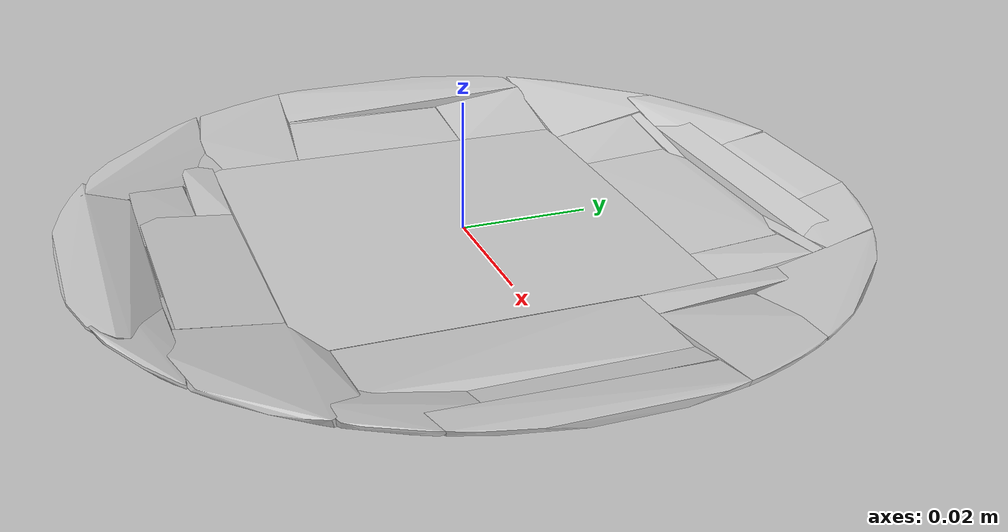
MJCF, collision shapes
<mujoco model="mug_70">
  <compiler angle="radian" autolimits="true" meshdir="."/>
  <asset>
    <mesh file="visual/model_normalized_0.obj" name="mug_6_normalized_0_vis" scale="0.12 0.12 0.12" refquat="0.7071067811865472 0.0 0.0 0.7071067811865476" />
    <mesh file="collision/model_normalized_collision_22.obj" name="mug_6_normalized_collision_22._coll" scale="0.12 0.12 0.12" refquat="0.7071067811865472 0.0 0.0 0.7071067811865476" />
    <mesh file="collision/model_normalized_collision_23.obj" name="mug_6_normalized_collision_23._coll" scale="0.12 0.12 0.12" refquat="0.7071067811865472 0.0 0.0 0.7071067811865476" />
    <mesh file="collision/model_normalized_collision_21.obj" name="mug_6_normalized_collision_21._coll" scale="0.12 0.12 0.12" refquat="0.7071067811865472 0.0 0.0 0.7071067811865476" />
    <mesh file="collision/model_normalized_collision_20.obj" name="mug_6_normalized_collision_20._coll" scale="0.12 0.12 0.12" refquat="0.7071067811865472 0.0 0.0 0.7071067811865476" />
    <mesh file="collision/model_normalized_collision_24.obj" name="mug_6_normalized_collision_24._coll" scale="0.12 0.12 0.12" refquat="0.7071067811865472 0.0 0.0 0.7071067811865476" />
    <mesh file="collision/model_normalized_collision_30.obj" name="mug_6_normalized_collision_30._coll" scale="0.12 0.12 0.12" refquat="0.7071067811865472 0.0 0.0 0.7071067811865476" />
    <mesh file="collision/model_normalized_collision_18.obj" name="mug_6_normalized_collision_18._coll" scale="0.12 0.12 0.12" refquat="0.7071067811865472 0.0 0.0 0.7071067811865476" />
    <mesh file="collision/model_normalized_collision_19.obj" name="mug_6_normalized_collision_19._coll" scale="0.12 0.12 0.12" refquat="0.7071067811865472 0.0 0.0 0.7071067811865476" />
    <mesh file="collision/model_normalized_collision_31.obj" name="mug_6_normalized_collision_31._coll" scale="0.12 0.12 0.12" refquat="0.7071067811865472 0.0 0.0 0.7071067811865476" />
    <mesh file="collision/model_normalized_collision_25.obj" name="mug_6_normalized_collision_25._coll" scale="0.12 0.12 0.12" refquat="0.7071067811865472 0.0 0.0 0.7071067811865476" />
    <mesh file="collision/model_normalized_collision_27.obj" name="mug_6_normalized_collision_27._coll" scale="0.12 0.12 0.12" refquat="0.7071067811865472 0.0 0.0 0.7071067811865476" />
    <mesh file="collision/model_normalized_collision_26.obj" name="mug_6_normalized_collision_26._coll" scale="0.12 0.12 0.12" refquat="0.7071067811865472 0.0 0.0 0.7071067811865476" />
    <mesh file="collision/model_normalized_collision_9.obj" name="mug_6_normalized_collision_9._coll" scale="0.12 0.12 0.12" refquat="0.7071067811865472 0.0 0.0 0.7071067811865476" />
    <mesh file="collision/model_normalized_collision_8.obj" name="mug_6_normalized_collision_8._coll" scale="0.12 0.12 0.12" refquat="0.7071067811865472 0.0 0.0 0.7071067811865476" />
    <mesh file="collision/model_normalized_collision_6.obj" name="mug_6_normalized_collision_6._coll" scale="0.12 0.12 0.12" refquat="0.7071067811865472 0.0 0.0 0.7071067811865476" />
    <mesh file="collision/model_normalized_collision_7.obj" name="mug_6_normalized_collision_7._coll" scale="0.12 0.12 0.12" refquat="0.7071067811865472 0.0 0.0 0.7071067811865476" />
    <mesh file="collision/model_normalized_collision_5.obj" name="mug_6_normalized_collision_5._coll" scale="0.12 0.12 0.12" refquat="0.7071067811865472 0.0 0.0 0.7071067811865476" />
    <mesh file="collision/model_normalized_collision_4.obj" name="mug_6_normalized_collision_4._coll" scale="0.12 0.12 0.12" refquat="0.7071067811865472 0.0 0.0 0.7071067811865476" />
    <mesh file="collision/model_normalized_collision_0.obj" name="mug_6_normalized_collision_0._coll" scale="0.12 0.12 0.12" refquat="0.7071067811865472 0.0 0.0 0.7071067811865476" />
    <mesh file="collision/model_normalized_collision_1.obj" name="mug_6_normalized_collision_1._coll" scale="0.12 0.12 0.12" refquat="0.7071067811865472 0.0 0.0 0.7071067811865476" />
    <mesh file="collision/model_normalized_collision_3.obj" name="mug_6_normalized_collision_3._coll" scale="0.12 0.12 0.12" refquat="0.7071067811865472 0.0 0.0 0.7071067811865476" />
    <mesh file="collision/model_normalized_collision_2.obj" name="mug_6_normalized_collision_2._coll" scale="0.12 0.12 0.12" refquat="0.7071067811865472 0.0 0.0 0.7071067811865476" />
    <mesh file="collision/model_normalized_collision_17.obj" name="mug_6_normalized_collision_17._coll" scale="0.12 0.12 0.12" refquat="0.7071067811865472 0.0 0.0 0.7071067811865476" />
    <mesh file="collision/model_normalized_collision_16.obj" name="mug_6_normalized_collision_16._coll" scale="0.12 0.12 0.12" refquat="0.7071067811865472 0.0 0.0 0.7071067811865476" />
    <mesh file="collision/model_normalized_collision_28.obj" name="mug_6_normalized_collision_28._coll" scale="0.12 0.12 0.12" refquat="0.7071067811865472 0.0 0.0 0.7071067811865476" />
    <mesh file="collision/model_normalized_collision_14.obj" name="mug_6_normalized_collision_14._coll" scale="0.12 0.12 0.12" refquat="0.7071067811865472 0.0 0.0 0.7071067811865476" />
    <mesh file="collision/model_normalized_collision_15.obj" name="mug_6_normalized_collision_15._coll" scale="0.12 0.12 0.12" refquat="0.7071067811865472 0.0 0.0 0.7071067811865476" />
    <mesh file="collision/model_normalized_collision_29.obj" name="mug_6_normalized_collision_29._coll" scale="0.12 0.12 0.12" refquat="0.7071067811865472 0.0 0.0 0.7071067811865476" />
    <mesh file="collision/model_normalized_collision_11.obj" name="mug_6_normalized_collision_11._coll" scale="0.12 0.12 0.12" refquat="0.7071067811865472 0.0 0.0 0.7071067811865476" />
    <mesh file="collision/model_normalized_collision_10.obj" name="mug_6_normalized_collision_10._coll" scale="0.12 0.12 0.12" refquat="0.7071067811865472 0.0 0.0 0.7071067811865476" />
    <mesh file="collision/model_normalized_collision_12.obj" name="mug_6_normalized_collision_12._coll" scale="0.12 0.12 0.12" refquat="0.7071067811865472 0.0 0.0 0.7071067811865476" />
    <mesh file="collision/model_normalized_collision_13.obj" name="mug_6_normalized_collision_13._coll" scale="0.12 0.12 0.12" refquat="0.7071067811865472 0.0 0.0 0.7071067811865476" />
    <texture type="2d" name="mug_60" file="visual/image0.png" />
    <material name="m_mug_mug_6" texture="mug_60" specular="0.5" shininess="0.359999993" />
  </asset>
  <worldbody>
    <body name="body_obj_mug_6">
      <freejoint /><body name="object_mug_6">
        <geom solimp="0.998 0.998 0.001" solref="0.001 1" density="100" friction="0.95 0.3 0.1" type="mesh" mesh="mug_6_normalized_0_vis" conaffinity="0" contype="0" group="2" material="m_mug_mug_6" />
        <geom solimp="0.998 0.998 0.001" solref="0.001 1" density="100" friction="0.95 0.3 0.1" type="mesh" mesh="mug_6_normalized_collision_22._coll" group="3" rgba="0.8 0.8 0.8 0.0" />
        <geom solimp="0.998 0.998 0.001" solref="0.001 1" density="100" friction="0.95 0.3 0.1" type="mesh" mesh="mug_6_normalized_collision_23._coll" group="3" rgba="0.8 0.8 0.8 0.0" />
        <geom solimp="0.998 0.998 0.001" solref="0.001 1" density="100" friction="0.95 0.3 0.1" type="mesh" mesh="mug_6_normalized_collision_21._coll" group="3" rgba="0.8 0.8 0.8 0.0" />
        <geom solimp="0.998 0.998 0.001" solref="0.001 1" density="100" friction="0.95 0.3 0.1" type="mesh" mesh="mug_6_normalized_collision_20._coll" group="3" rgba="0.8 0.8 0.8 0.0" />
        <geom solimp="0.998 0.998 0.001" solref="0.001 1" density="100" friction="0.95 0.3 0.1" type="mesh" mesh="mug_6_normalized_collision_24._coll" group="3" rgba="0.8 0.8 0.8 0.0" />
        <geom solimp="0.998 0.998 0.001" solref="0.001 1" density="100" friction="0.95 0.3 0.1" type="mesh" mesh="mug_6_normalized_collision_30._coll" group="3" rgba="0.8 0.8 0.8 0.0" />
        <geom solimp="0.998 0.998 0.001" solref="0.001 1" density="100" friction="0.95 0.3 0.1" type="mesh" mesh="mug_6_normalized_collision_18._coll" group="3" rgba="0.8 0.8 0.8 0.0" />
        <geom solimp="0.998 0.998 0.001" solref="0.001 1" density="100" friction="0.95 0.3 0.1" type="mesh" mesh="mug_6_normalized_collision_19._coll" group="3" rgba="0.8 0.8 0.8 0.0" />
        <geom solimp="0.998 0.998 0.001" solref="0.001 1" density="100" friction="0.95 0.3 0.1" type="mesh" mesh="mug_6_normalized_collision_31._coll" group="3" rgba="0.8 0.8 0.8 0.0" />
        <geom solimp="0.998 0.998 0.001" solref="0.001 1" density="100" friction="0.95 0.3 0.1" type="mesh" mesh="mug_6_normalized_collision_25._coll" group="3" rgba="0.8 0.8 0.8 0.0" />
        <geom solimp="0.998 0.998 0.001" solref="0.001 1" density="100" friction="0.95 0.3 0.1" type="mesh" mesh="mug_6_normalized_collision_27._coll" group="3" rgba="0.8 0.8 0.8 0.0" />
        <geom solimp="0.998 0.998 0.001" solref="0.001 1" density="100" friction="0.95 0.3 0.1" type="mesh" mesh="mug_6_normalized_collision_26._coll" group="3" rgba="0.8 0.8 0.8 0.0" />
        <geom solimp="0.998 0.998 0.001" solref="0.001 1" density="100" friction="0.95 0.3 0.1" type="mesh" mesh="mug_6_normalized_collision_9._coll" group="3" rgba="0.8 0.8 0.8 0.0" />
        <geom solimp="0.998 0.998 0.001" solref="0.001 1" density="100" friction="0.95 0.3 0.1" type="mesh" mesh="mug_6_normalized_collision_8._coll" group="3" rgba="0.8 0.8 0.8 0.0" />
        <geom solimp="0.998 0.998 0.001" solref="0.001 1" density="100" friction="0.95 0.3 0.1" type="mesh" mesh="mug_6_normalized_collision_6._coll" group="3" rgba="0.8 0.8 0.8 0.0" />
        <geom solimp="0.998 0.998 0.001" solref="0.001 1" density="100" friction="0.95 0.3 0.1" type="mesh" mesh="mug_6_normalized_collision_7._coll" group="3" rgba="0.8 0.8 0.8 0.0" />
        <geom solimp="0.998 0.998 0.001" solref="0.001 1" density="100" friction="0.95 0.3 0.1" type="mesh" mesh="mug_6_normalized_collision_5._coll" group="3" rgba="0.8 0.8 0.8 0.0" />
        <geom solimp="0.998 0.998 0.001" solref="0.001 1" density="100" friction="0.95 0.3 0.1" type="mesh" mesh="mug_6_normalized_collision_4._coll" group="3" rgba="0.8 0.8 0.8 0.0" />
        <geom solimp="0.998 0.998 0.001" solref="0.001 1" density="100" friction="0.95 0.3 0.1" type="mesh" mesh="mug_6_normalized_collision_0._coll" group="3" rgba="0.8 0.8 0.8 0.0" />
        <geom solimp="0.998 0.998 0.001" solref="0.001 1" density="100" friction="0.95 0.3 0.1" type="mesh" mesh="mug_6_normalized_collision_1._coll" group="3" rgba="0.8 0.8 0.8 0.0" />
        <geom solimp="0.998 0.998 0.001" solref="0.001 1" density="100" friction="0.95 0.3 0.1" type="mesh" mesh="mug_6_normalized_collision_3._coll" group="3" rgba="0.8 0.8 0.8 0.0" />
        <geom solimp="0.998 0.998 0.001" solref="0.001 1" density="100" friction="0.95 0.3 0.1" type="mesh" mesh="mug_6_normalized_collision_2._coll" group="3" rgba="0.8 0.8 0.8 0.0" />
        <geom solimp="0.998 0.998 0.001" solref="0.001 1" density="100" friction="0.95 0.3 0.1" type="mesh" mesh="mug_6_normalized_collision_17._coll" group="3" rgba="0.8 0.8 0.8 0.0" />
        <geom solimp="0.998 0.998 0.001" solref="0.001 1" density="100" friction="0.95 0.3 0.1" type="mesh" mesh="mug_6_normalized_collision_16._coll" group="3" rgba="0.8 0.8 0.8 0.0" />
        <geom solimp="0.998 0.998 0.001" solref="0.001 1" density="100" friction="0.95 0.3 0.1" type="mesh" mesh="mug_6_normalized_collision_28._coll" group="3" rgba="0.8 0.8 0.8 0.0" />
        <geom solimp="0.998 0.998 0.001" solref="0.001 1" density="100" friction="0.95 0.3 0.1" type="mesh" mesh="mug_6_normalized_collision_14._coll" group="3" rgba="0.8 0.8 0.8 0.0" />
        <geom solimp="0.998 0.998 0.001" solref="0.001 1" density="100" friction="0.95 0.3 0.1" type="mesh" mesh="mug_6_normalized_collision_15._coll" group="3" rgba="0.8 0.8 0.8 0.0" />
        <geom solimp="0.998 0.998 0.001" solref="0.001 1" density="100" friction="0.95 0.3 0.1" type="mesh" mesh="mug_6_normalized_collision_29._coll" group="3" rgba="0.8 0.8 0.8 0.0" />
        <geom solimp="0.998 0.998 0.001" solref="0.001 1" density="100" friction="0.95 0.3 0.1" type="mesh" mesh="mug_6_normalized_collision_11._coll" group="3" rgba="0.8 0.8 0.8 0.0" />
        <geom solimp="0.998 0.998 0.001" solref="0.001 1" density="100" friction="0.95 0.3 0.1" type="mesh" mesh="mug_6_normalized_collision_10._coll" group="3" rgba="0.8 0.8 0.8 0.0" />
        <geom solimp="0.998 0.998 0.001" solref="0.001 1" density="100" friction="0.95 0.3 0.1" type="mesh" mesh="mug_6_normalized_collision_12._coll" group="3" rgba="0.8 0.8 0.8 0.0" />
        <geom solimp="0.998 0.998 0.001" solref="0.001 1" density="100" friction="0.95 0.3 0.1" type="mesh" mesh="mug_6_normalized_collision_13._coll" group="3" rgba="0.8 0.8 0.8 0.0" />
      </body>
      <site rgba="0 0 0 0" size="0.005" pos="4.243902500000201e-05 7.88710249999995e-05 -0.0428075701" name="bottom_site_mug_6" />
      <site rgba="0 0 0 0" size="0.005" pos="4.243902500000201e-05 7.88710249999995e-05 0.042628894599999995" name="top_site_mug_6" />
      <site rgba="0 0 0 0" size="0.005" pos="0.04203482185 0.05653210019999999 -8.933774999999949e-05" name="horizontal_radius_site_mug_6" />
    </body>
  </worldbody>
</mujoco>
